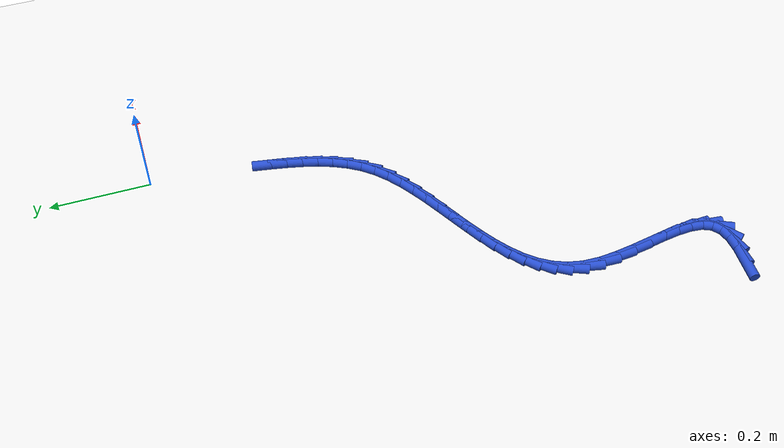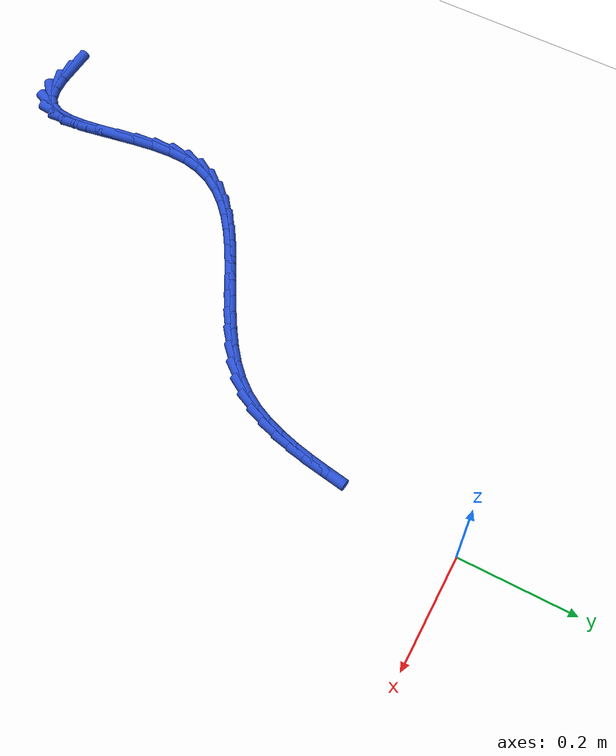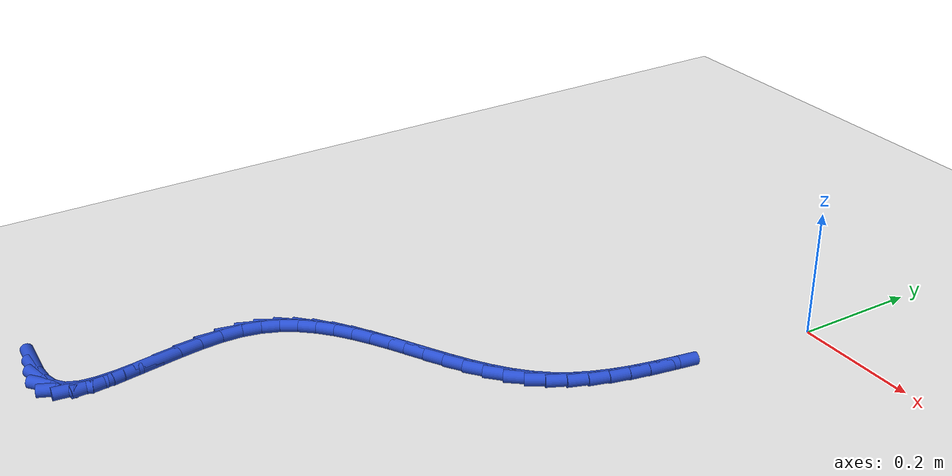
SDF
<sdf version="1.6">
 <world name="default">
  <model name="ground_plane">
   <static>1</static>
   <link name="link">
    <collision name="collision">
     <geometry><plane><normal>0 0 1</normal><size>100 100</size></plane></geometry>
     <surface><friction><ode><mu>100</mu><mu2>50</mu2></ode></friction></surface>
    </collision>
    <visual name="visual">
     <cast_shadows>0</cast_shadows>
     <geometry><plane><normal>0 0 1</normal><size>100 100</size></plane></geometry>
     <material>
      <script><uri>file://media/materials/scripts/gazebo.material</uri><name>Gazebo/WhiteGlow</name></script>
     </material>
    </visual>
   </link>
  </model>
  <model name="line">
   <link name="link_247">
    <pose>-0.5307683496632367 -1.029921666568667 0.01 0 1.57 -0.07044153059085159</pose>
    <collision name="collision">
     <geometry><cylinder><radius>0.01</radius><length>0.08</length></cylinder></geometry>
    </collision>
    <visual name="visual">
     <material>
      <script><name>Gazebo/Blue</name><uri>file://media/materials/scripts/gazebo.material</uri></script>
     </material>
     <geometry><cylinder><radius>0.01</radius><length>0.08</length></cylinder></geometry>
    </visual>
   </link>
   <link name="link_248">
    <pose>-0.499791056669613 -1.0321073708587842 0.01 0 1.57 0.05250765410873856</pose>
    <collision name="collision">
     <geometry><cylinder><radius>0.01</radius><length>0.08</length></cylinder></geometry>
    </collision>
    <visual name="visual">
     <material>
      <script><name>Gazebo/Blue</name><uri>file://media/materials/scripts/gazebo.material</uri></script>
     </material>
     <geometry><cylinder><radius>0.01</radius><length>0.08</length></cylinder></geometry>
    </visual>
   </link>
   <link name="link_249">
    <pose>-0.4730113859203786 -1.0306999394774823 0.01 0 1.57 0.2809193986327354</pose>
    <collision name="collision">
     <geometry><cylinder><radius>0.01</radius><length>0.08</length></cylinder></geometry>
    </collision>
    <visual name="visual">
     <material>
      <script><name>Gazebo/Blue</name><uri>file://media/materials/scripts/gazebo.material</uri></script>
     </material>
     <geometry><cylinder><radius>0.01</radius><length>0.08</length></cylinder></geometry>
    </visual>
   </link>
   <link name="link_250">
    <pose>-0.45153922891742754 -1.0245041483454522 0.01 0 1.57 0.6798545670974061</pose>
    <collision name="collision">
     <geometry><cylinder><radius>0.01</radius><length>0.08</length></cylinder></geometry>
    </collision>
    <visual name="visual">
     <material>
      <script><name>Gazebo/Blue</name><uri>file://media/materials/scripts/gazebo.material</uri></script>
     </material>
     <geometry><cylinder><radius>0.01</radius><length>0.08</length></cylinder></geometry>
    </visual>
   </link>
   <link name="link_251">
    <pose>-0.43647940962440746 -1.0123294761739603 0.01 0 1.57 1.1526382992557898</pose>
    <collision name="collision">
     <geometry><cylinder><radius>0.01</radius><length>0.08</length></cylinder></geometry>
    </collision>
    <visual name="visual">
     <material>
      <script><name>Gazebo/Blue</name><uri>file://media/materials/scripts/gazebo.material</uri></script>
     </material>
     <geometry><cylinder><radius>0.01</radius><length>0.08</length></cylinder></geometry>
    </visual>
   </link>
   <link name="link_252">
    <pose>-0.42819107992192695 -0.9936774023014677 0.01 0 1.57 1.4604236010141107</pose>
    <collision name="collision">
     <geometry><cylinder><radius>0.01</radius><length>0.08</length></cylinder></geometry>
    </collision>
    <visual name="visual">
     <material>
      <script><name>Gazebo/Blue</name><uri>file://media/materials/scripts/gazebo.material</uri></script>
     </material>
     <geometry><cylinder><radius>0.01</radius><length>0.08</length></cylinder></geometry>
    </visual>
   </link>
   <link name="link_253">
    <pose>-0.42550780650275516 -0.969465183766631 0.01 0 1.57 -1.5161555887788578</pose>
    <collision name="collision">
     <geometry><cylinder><radius>0.01</radius><length>0.08</length></cylinder></geometry>
    </collision>
    <visual name="visual">
     <material>
      <script><name>Gazebo/Blue</name><uri>file://media/materials/scripts/gazebo.material</uri></script>
     </material>
     <geometry><cylinder><radius>0.01</radius><length>0.08</length></cylinder></geometry>
    </visual>
   </link>
   <link name="link_254">
    <pose>-0.42707657102424085 -0.9407832327583042 0.01 0 1.57 -1.4323365406869732</pose>
    <collision name="collision">
     <geometry><cylinder><radius>0.01</radius><length>0.08</length></cylinder></geometry>
    </collision>
    <visual name="visual">
     <material>
      <script><name>Gazebo/Blue</name><uri>file://media/materials/scripts/gazebo.material</uri></script>
     </material>
     <geometry><cylinder><radius>0.01</radius><length>0.08</length></cylinder></geometry>
    </visual>
   </link>
   <link name="link_255">
    <pose>-0.43154435514373274 -0.9087219614653406 0.01 0 1.57 -1.397479931571485</pose>
    <collision name="collision">
     <geometry><cylinder><radius>0.01</radius><length>0.08</length></cylinder></geometry>
    </collision>
    <visual name="visual">
     <material>
      <script><name>Gazebo/Blue</name><uri>file://media/materials/scripts/gazebo.material</uri></script>
     </material>
     <geometry><cylinder><radius>0.01</radius><length>0.08</length></cylinder></geometry>
    </visual>
   </link>
   <link name="link_256">
    <pose>-0.43755814051857955 -0.8743717820765938 0.01 0 1.57 -1.3979396310816794</pose>
    <collision name="collision">
     <geometry><cylinder><radius>0.01</radius><length>0.08</length></cylinder></geometry>
    </collision>
    <visual name="visual">
     <material>
      <script><name>Gazebo/Blue</name><uri>file://media/materials/scripts/gazebo.material</uri></script>
     </material>
     <geometry><cylinder><radius>0.01</radius><length>0.08</length></cylinder></geometry>
    </visual>
   </link>
   <link name="link_257">
    <pose>-0.44376490880613023 -0.8388231067809178 0.01 0 1.57 -1.4301937412021024</pose>
    <collision name="collision">
     <geometry><cylinder><radius>0.01</radius><length>0.08</length></cylinder></geometry>
    </collision>
    <visual name="visual">
     <material>
      <script><name>Gazebo/Blue</name><uri>file://media/materials/scripts/gazebo.material</uri></script>
     </material>
     <geometry><cylinder><radius>0.01</radius><length>0.08</length></cylinder></geometry>
    </visual>
   </link>
   <link name="link_258">
    <pose>-0.4488116416637332 -0.8031663477671654 0.01 0 1.57 -1.4978554283626726</pose>
    <collision name="collision">
     <geometry><cylinder><radius>0.01</radius><length>0.08</length></cylinder></geometry>
    </collision>
    <visual name="visual">
     <material>
      <script><name>Gazebo/Blue</name><uri>file://media/materials/scripts/gazebo.material</uri></script>
     </material>
     <geometry><cylinder><radius>0.01</radius><length>0.08</length></cylinder></geometry>
    </visual>
   </link>
   <link name="link_259">
    <pose>-0.45134532074873734 -0.7684919172241909 0.01 0 1.57 1.5299502245653471</pose>
    <collision name="collision">
     <geometry><cylinder><radius>0.01</radius><length>0.08</length></cylinder></geometry>
    </collision>
    <visual name="visual">
     <material>
      <script><name>Gazebo/Blue</name><uri>file://media/materials/scripts/gazebo.material</uri></script>
     </material>
     <geometry><cylinder><radius>0.01</radius><length>0.08</length></cylinder></geometry>
    </visual>
   </link>
   <link name="link_260">
    <pose>-0.45001292771849144 -0.7358902273408476 0.01 0 1.57 1.3610005620922827</pose>
    <collision name="collision">
     <geometry><cylinder><radius>0.01</radius><length>0.08</length></cylinder></geometry>
    </collision>
    <visual name="visual">
     <material>
      <script><name>Gazebo/Blue</name><uri>file://media/materials/scripts/gazebo.material</uri></script>
     </material>
     <geometry><cylinder><radius>0.01</radius><length>0.08</length></cylinder></geometry>
    </visual>
   </link>
   <link name="link_261">
    <pose>-0.4437054326961497 -0.7062676921348823 0.01 0 1.57 1.175864627956381</pose>
    <collision name="collision">
     <geometry><cylinder><radius>0.01</radius><length>0.08</length></cylinder></geometry>
    </collision>
    <visual name="visual">
     <material>
      <script><name>Gazebo/Blue</name><uri>file://media/materials/scripts/gazebo.material</uri></script>
     </material>
     <geometry><cylinder><radius>0.01</radius><length>0.08</length></cylinder></geometry>
    </visual>
   </link>
   <link name="link_262">
    <pose>-0.43257956622991484 -0.6795761821274873 0.01 0 1.57 1.0031528998955777</pose>
    <collision name="collision">
     <geometry><cylinder><radius>0.01</radius><length>0.08</length></cylinder></geometry>
    </collision>
    <visual name="visual">
     <material>
      <script><name>Gazebo/Blue</name><uri>file://media/materials/scripts/gazebo.material</uri></script>
     </material>
     <geometry><cylinder><radius>0.01</radius><length>0.08</length></cylinder></geometry>
    </visual>
   </link>
   <link name="link_263">
    <pose>-0.41720125997577145 -0.655458978435032 0.01 0 1.57 0.8544984054126312</pose>
    <collision name="collision">
     <geometry><cylinder><radius>0.01</radius><length>0.08</length></cylinder></geometry>
    </collision>
    <visual name="visual">
     <material>
      <script><name>Gazebo/Blue</name><uri>file://media/materials/scripts/gazebo.material</uri></script>
     </material>
     <geometry><cylinder><radius>0.01</radius><length>0.08</length></cylinder></geometry>
    </visual>
   </link>
   <link name="link_264">
    <pose>-0.3981366511772245 -0.6335592071348854 0.01 0 1.57 0.7346280292372867</pose>
    <collision name="collision">
     <geometry><cylinder><radius>0.01</radius><length>0.08</length></cylinder></geometry>
    </collision>
    <visual name="visual">
     <material>
      <script><name>Gazebo/Blue</name><uri>file://media/materials/scripts/gazebo.material</uri></script>
     </material>
     <geometry><cylinder><radius>0.01</radius><length>0.08</length></cylinder></geometry>
    </visual>
   </link>
   <link name="link_265">
    <pose>-0.37595187707777944 -0.6135199943044168 0.01 0 1.57 0.6430204380567908</pose>
    <collision name="collision">
     <geometry><cylinder><radius>0.01</radius><length>0.08</length></cylinder></geometry>
    </collision>
    <visual name="visual">
     <material>
      <script><name>Gazebo/Blue</name><uri>file://media/materials/scripts/gazebo.material</uri></script>
     </material>
     <geometry><cylinder><radius>0.01</radius><length>0.08</length></cylinder></geometry>
    </visual>
   </link>
   <link name="link_266">
    <pose>-0.3512130749209397 -0.5949844660209936 0.01 0 1.57 0.576805604569784</pose>
    <collision name="collision">
     <geometry><cylinder><radius>0.01</radius><length>0.08</length></cylinder></geometry>
    </collision>
    <visual name="visual">
     <material>
      <script><name>Gazebo/Blue</name><uri>file://media/materials/scripts/gazebo.material</uri></script>
     </material>
     <geometry><cylinder><radius>0.01</radius><length>0.08</length></cylinder></geometry>
    </visual>
   </link>
   <link name="link_267">
    <pose>-0.3244863819502109 -0.577595748361986 0.01 0 1.57 0.5328021096203164</pose>
    <collision name="collision">
     <geometry><cylinder><radius>0.01</radius><length>0.08</length></cylinder></geometry>
    </collision>
    <visual name="visual">
     <material>
      <script><name>Gazebo/Blue</name><uri>file://media/materials/scripts/gazebo.material</uri></script>
     </material>
     <geometry><cylinder><radius>0.01</radius><length>0.08</length></cylinder></geometry>
    </visual>
   </link>
   <link name="link_268">
    <pose>-0.29633793540909786 -0.5609969674047623 0.01 0 1.57 0.508476676326921</pose>
    <collision name="collision">
     <geometry><cylinder><radius>0.01</radius><length>0.08</length></cylinder></geometry>
    </collision>
    <visual name="visual">
     <material>
      <script><name>Gazebo/Blue</name><uri>file://media/materials/scripts/gazebo.material</uri></script>
     </material>
     <geometry><cylinder><radius>0.01</radius><length>0.08</length></cylinder></geometry>
    </visual>
   </link>
   <link name="link_269">
    <pose>-0.26733387254110547 -0.5448312492266918 0.01 0 1.57 0.5022685609542205</pose>
    <collision name="collision">
     <geometry><cylinder><radius>0.01</radius><length>0.08</length></cylinder></geometry>
    </collision>
    <visual name="visual">
     <material>
      <script><name>Gazebo/Blue</name><uri>file://media/materials/scripts/gazebo.material</uri></script>
     </material>
     <geometry><cylinder><radius>0.01</radius><length>0.08</length></cylinder></geometry>
    </visual>
   </link>
   <link name="link_270">
    <pose>-0.2380403305897386 -0.5287417199051432 0.01 0 1.57 0.5136508616530041</pose>
    <collision name="collision">
     <geometry><cylinder><radius>0.01</radius><length>0.08</length></cylinder></geometry>
    </collision>
    <visual name="visual">
     <material>
      <script><name>Gazebo/Blue</name><uri>file://media/materials/scripts/gazebo.material</uri></script>
     </material>
     <geometry><cylinder><radius>0.01</radius><length>0.08</length></cylinder></geometry>
    </visual>
   </link>
   <link name="link_271">
    <pose>-0.20902344679850218 -0.5123715055174857 0.01 0 1.57 0.5431116173336799</pose>
    <collision name="collision">
     <geometry><cylinder><radius>0.01</radius><length>0.08</length></cylinder></geometry>
    </collision>
    <visual name="visual">
     <material>
      <script><name>Gazebo/Blue</name><uri>file://media/materials/scripts/gazebo.material</uri></script>
     </material>
     <geometry><cylinder><radius>0.01</radius><length>0.08</length></cylinder></geometry>
    </visual>
   </link>
   <link name="link_272">
    <pose>-0.180849358410901 -0.49536373214108775 0.01 0 1.57 0.5920980911798529</pose>
    <collision name="collision">
     <geometry><cylinder><radius>0.01</radius><length>0.08</length></cylinder></geometry>
    </collision>
    <visual name="visual">
     <material>
      <script><name>Gazebo/Blue</name><uri>file://media/materials/scripts/gazebo.material</uri></script>
     </material>
     <geometry><cylinder><radius>0.01</radius><length>0.08</length></cylinder></geometry>
    </visual>
   </link>
   <link name="link_273">
    <pose>-0.1540842026704399 -0.47736152585331865 0.01 0 1.57 0.6628586819653038</pose>
    <collision name="collision">
     <geometry><cylinder><radius>0.01</radius><length>0.08</length></cylinder></geometry>
    </collision>
    <visual name="visual">
     <material>
      <script><name>Gazebo/Blue</name><uri>file://media/materials/scripts/gazebo.material</uri></script>
     </material>
     <geometry><cylinder><radius>0.01</radius><length>0.08</length></cylinder></geometry>
    </visual>
   </link>
   <link name="link_274">
    <pose>-0.12929411682062378 -0.4580080127315471 0.01 0 1.57 0.7579940547647446</pose>
    <collision name="collision">
     <geometry><cylinder><radius>0.01</radius><length>0.08</length></cylinder></geometry>
    </collision>
    <visual name="visual">
     <material>
      <script><name>Gazebo/Blue</name><uri>file://media/materials/scripts/gazebo.material</uri></script>
     </material>
     <geometry><cylinder><radius>0.01</radius><length>0.08</length></cylinder></geometry>
    </visual>
   </link>
   <link name="link_275">
    <pose>-0.10704523810495754 -0.4369463188531422 0.01 0 1.57 0.8792899368530815</pose>
    <collision name="collision">
     <geometry><cylinder><radius>0.01</radius><length>0.08</length></cylinder></geometry>
    </collision>
    <visual name="visual">
     <material>
      <script><name>Gazebo/Blue</name><uri>file://media/materials/scripts/gazebo.material</uri></script>
     </material>
     <geometry><cylinder><radius>0.01</radius><length>0.08</length></cylinder></geometry>
    </visual>
   </link>
   <link name="link_276">
    <pose>-0.08790090904191691 -0.41382156727573594 0.01 0 1.57 1.012581461650059</pose>
    <collision name="collision">
     <geometry><cylinder><radius>0.01</radius><length>0.08</length></cylinder></geometry>
    </collision>
    <visual name="visual">
     <material>
      <script><name>Gazebo/Blue</name><uri>file://media/materials/scripts/gazebo.material</uri></script>
     </material>
     <geometry><cylinder><radius>0.01</radius><length>0.08</length></cylinder></geometry>
    </visual>
   </link>
   <link name="link_277">
    <pose>-0.07209665793532333 -0.388513121817624 0.01 0 1.57 1.128611048763331</pose>
    <collision name="collision">
     <geometry><cylinder><radius>0.01</radius><length>0.08</length></cylinder></geometry>
    </collision>
    <visual name="visual">
     <material>
      <script><name>Gazebo/Blue</name><uri>file://media/materials/scripts/gazebo.material</uri></script>
     </material>
     <geometry><cylinder><radius>0.01</radius><length>0.08</length></cylinder></geometry>
    </visual>
   </link>
   <link name="link_278">
    <pose>-0.059236840025111606 -0.3613513531539923 0.01 0 1.57 1.2229317295003361</pose>
    <collision name="collision">
     <geometry><cylinder><radius>0.01</radius><length>0.08</length></cylinder></geometry>
    </collision>
    <visual name="visual">
     <material>
      <script><name>Gazebo/Blue</name><uri>file://media/materials/scripts/gazebo.material</uri></script>
     </material>
     <geometry><cylinder><radius>0.01</radius><length>0.08</length></cylinder></geometry>
    </visual>
   </link>
   <link name="link_279">
    <pose>-0.04885405328780596 -0.3327179063563557 0.01 0 1.57 1.2962102493194692</pose>
    <collision name="collision">
     <geometry><cylinder><radius>0.01</radius><length>0.08</length></cylinder></geometry>
    </collision>
    <visual name="visual">
     <material>
      <script><name>Gazebo/Blue</name><uri>file://media/materials/scripts/gazebo.material</uri></script>
     </material>
     <geometry><cylinder><radius>0.01</radius><length>0.08</length></cylinder></geometry>
    </visual>
   </link>
   <link name="link_280">
    <pose>-0.040480895699930665 -0.3029944264962297 0.01 0 1.57 1.3499898731535918</pose>
    <collision name="collision">
     <geometry><cylinder><radius>0.01</radius><length>0.08</length></cylinder></geometry>
    </collision>
    <visual name="visual">
     <material>
      <script><name>Gazebo/Blue</name><uri>file://media/materials/scripts/gazebo.material</uri></script>
     </material>
     <geometry><cylinder><radius>0.01</radius><length>0.08</length></cylinder></geometry>
    </visual>
   </link>
   <link name="link_281">
    <pose>-0.03364996523800934 -0.27256255864512746 0.01 0 1.57 1.3857980910201209</pose>
    <collision name="collision">
     <geometry><cylinder><radius>0.01</radius><length>0.08</length></cylinder></geometry>
    </collision>
    <visual name="visual">
     <material>
      <script><name>Gazebo/Blue</name><uri>file://media/materials/scripts/gazebo.material</uri></script>
     </material>
     <geometry><cylinder><radius>0.01</radius><length>0.08</length></cylinder></geometry>
    </visual>
   </link>
   <link name="link_282">
    <pose>-0.027893859878566404 -0.24180394787456475 0.01 0 1.57 1.4046600517914245</pose>
    <collision name="collision">
     <geometry><cylinder><radius>0.01</radius><length>0.08</length></cylinder></geometry>
    </collision>
    <visual name="visual">
     <material>
      <script><name>Gazebo/Blue</name><uri>file://media/materials/scripts/gazebo.material</uri></script>
     </material>
     <geometry><cylinder><radius>0.01</radius><length>0.08</length></cylinder></geometry>
    </visual>
   </link>
  </model>
 </world>
</sdf>
